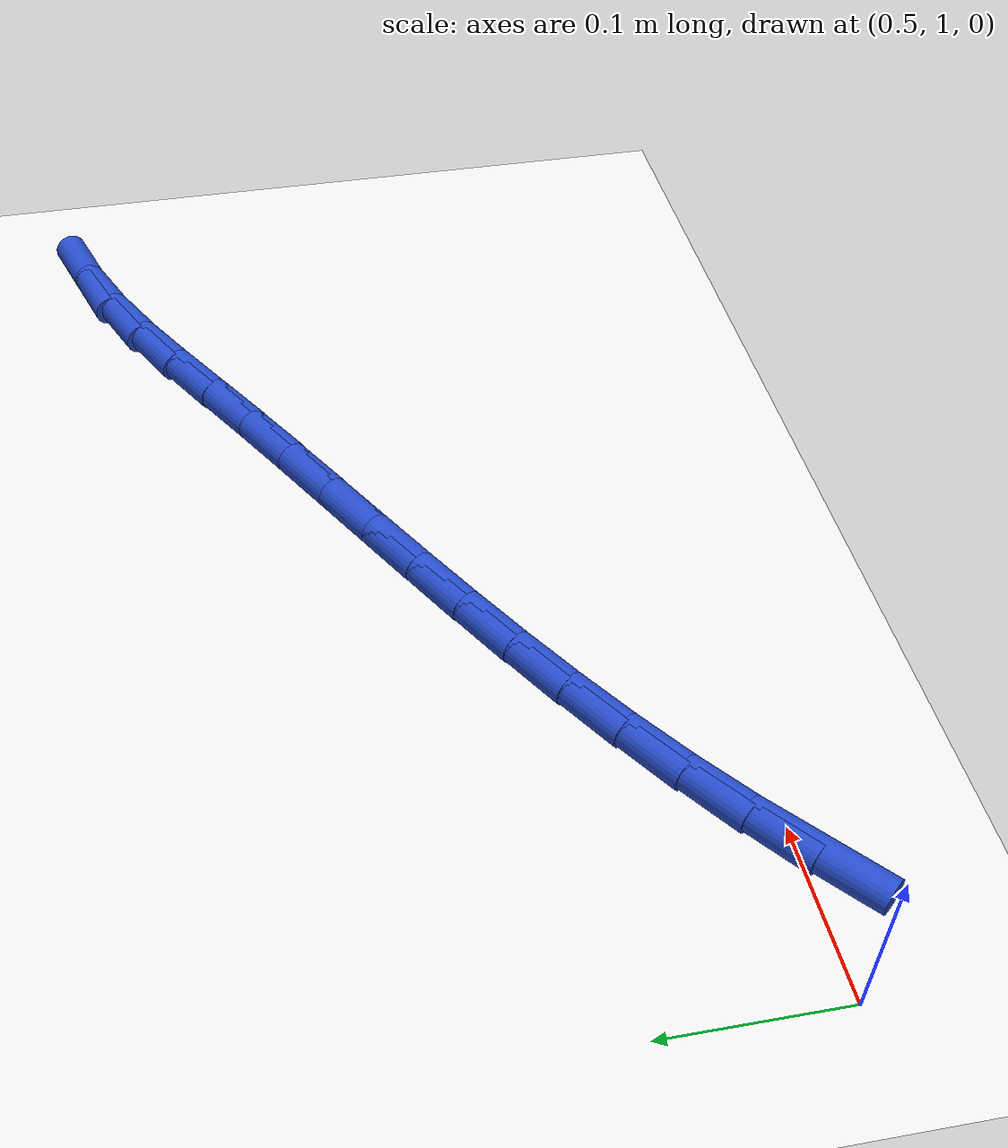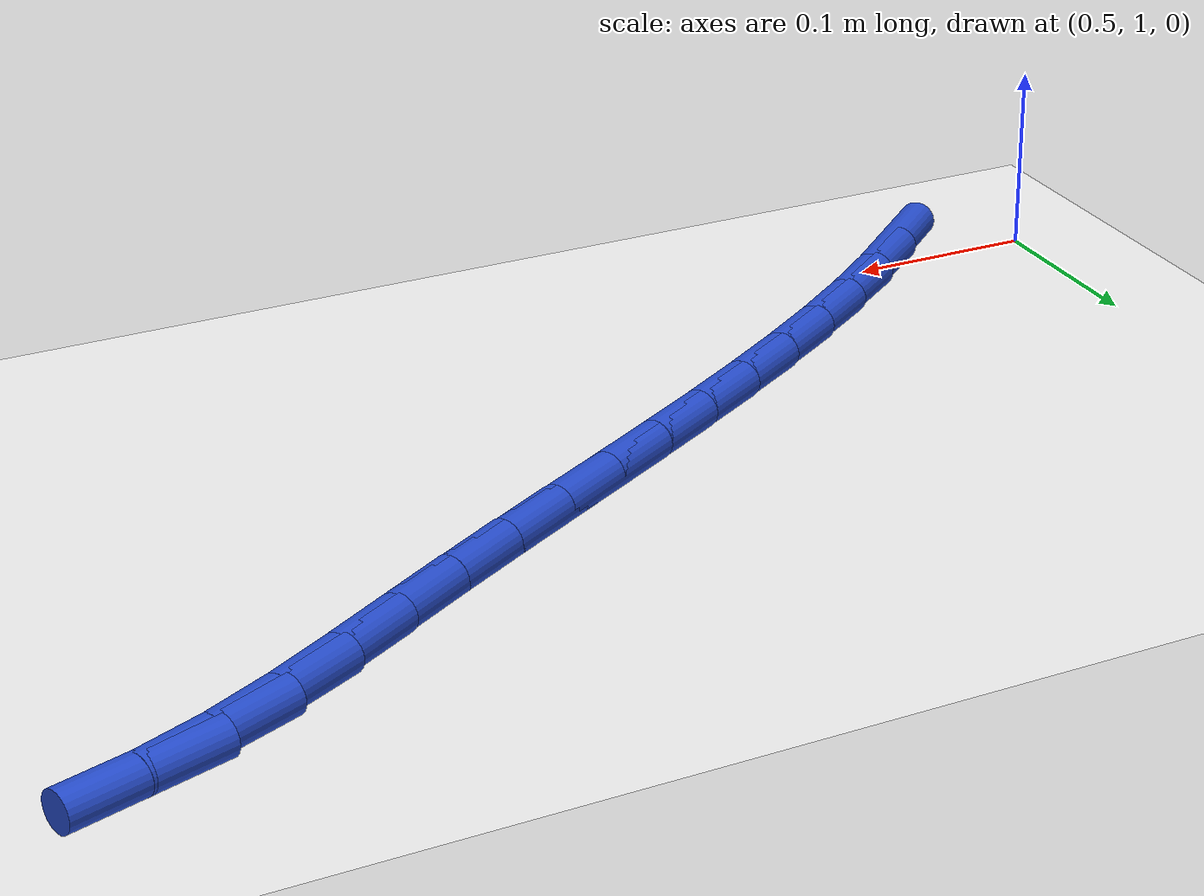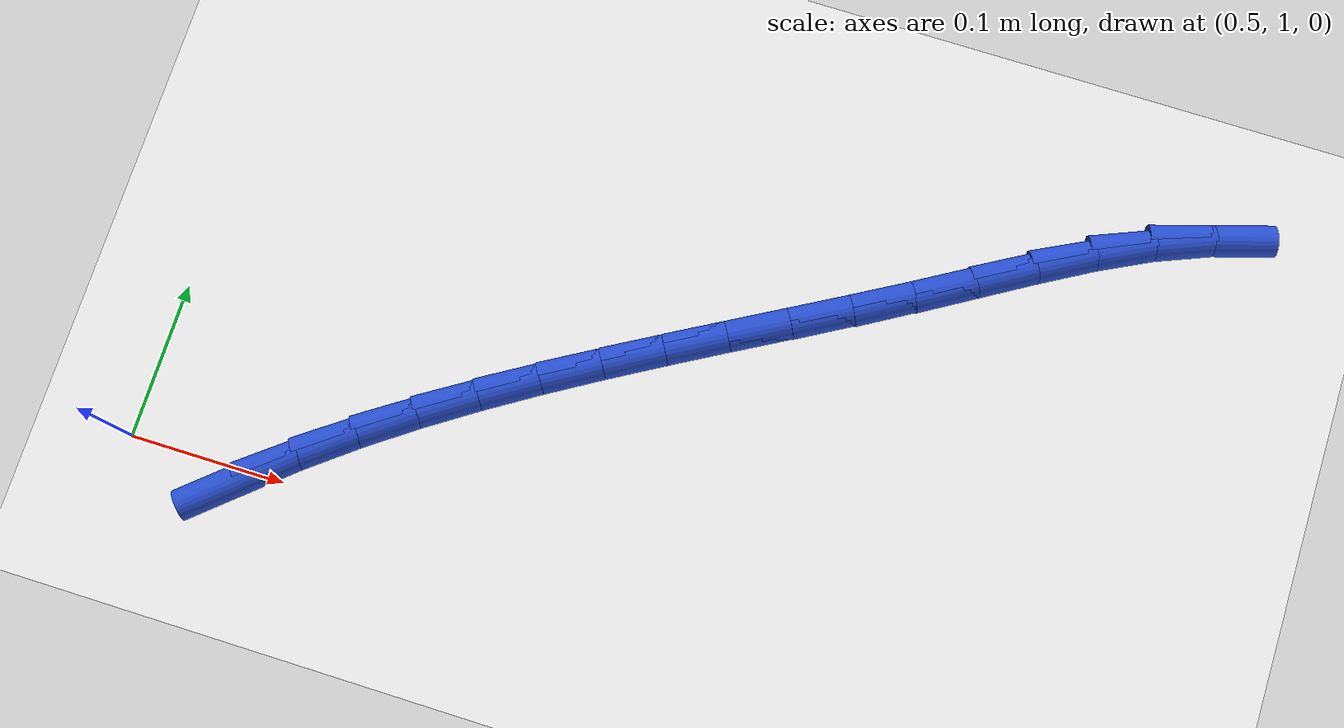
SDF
<sdf version="1.6">
 <world name="default">
  <model name="ground_plane">
   <static>1</static>
   <link name="link">
    <collision name="collision">
     <geometry><plane><normal>0 0 1</normal><size>100 100</size></plane></geometry>
     <surface><friction><ode><mu>100</mu><mu2>50</mu2></ode></friction></surface>
    </collision>
    <visual name="visual">
     <cast_shadows>0</cast_shadows>
     <geometry><plane><normal>0 0 1</normal><size>100 100</size></plane></geometry>
     <material>
      <script><uri>file://media/materials/scripts/gazebo.material</uri><name>Gazebo/WhiteGlow</name></script>
     </material>
    </visual>
   </link>
  </model>
  <model name="line">
   <link name="link_31">
    <pose>0.5760875311147672 0.993373460121395 0.01 0 1.57 0.7157484069641468</pose>
    <collision name="collision">
     <geometry><cylinder><radius>0.01</radius><length>0.08</length></cylinder></geometry>
    </collision>
    <visual name="visual">
     <material>
      <script><name>Gazebo/Blue</name><uri>file://media/materials/scripts/gazebo.material</uri></script>
     </material>
     <geometry><cylinder><radius>0.01</radius><length>0.08</length></cylinder></geometry>
    </visual>
   </link>
   <link name="link_32">
    <pose>0.6048326399451809 1.0183694501111396 0.01 0 1.57 0.6677176395451531</pose>
    <collision name="collision">
     <geometry><cylinder><radius>0.01</radius><length>0.08</length></cylinder></geometry>
    </collision>
    <visual name="visual">
     <material>
      <script><name>Gazebo/Blue</name><uri>file://media/materials/scripts/gazebo.material</uri></script>
     </material>
     <geometry><cylinder><radius>0.01</radius><length>0.08</length></cylinder></geometry>
    </visual>
   </link>
   <link name="link_33">
    <pose>0.6350610630148626 1.0422059507422439 0.01 0 1.57 0.6267960547733811</pose>
    <collision name="collision">
     <geometry><cylinder><radius>0.01</radius><length>0.08</length></cylinder></geometry>
    </collision>
    <visual name="visual">
     <material>
      <script><name>Gazebo/Blue</name><uri>file://media/materials/scripts/gazebo.material</uri></script>
     </material>
     <geometry><cylinder><radius>0.01</radius><length>0.08</length></cylinder></geometry>
    </visual>
   </link>
   <link name="link_34">
    <pose>0.6665693199928198 1.0650248278471006 0.01 0 1.57 0.592663236238043</pose>
    <collision name="collision">
     <geometry><cylinder><radius>0.01</radius><length>0.08</length></cylinder></geometry>
    </collision>
    <visual name="visual">
     <material>
      <script><name>Gazebo/Blue</name><uri>file://media/materials/scripts/gazebo.material</uri></script>
     </material>
     <geometry><cylinder><radius>0.01</radius><length>0.08</length></cylinder></geometry>
    </visual>
   </link>
   <link name="link_35">
    <pose>0.6991539305480601 1.0869679472581026 0.01 0 1.57 0.5649850006141625</pose>
    <collision name="collision">
     <geometry><cylinder><radius>0.01</radius><length>0.08</length></cylinder></geometry>
    </collision>
    <visual name="visual">
     <material>
      <script><name>Gazebo/Blue</name><uri>file://media/materials/scripts/gazebo.material</uri></script>
     </material>
     <geometry><cylinder><radius>0.01</radius><length>0.08</length></cylinder></geometry>
    </visual>
   </link>
   <link name="link_36">
    <pose>0.7326114143495912 1.1081771748076439 0.01 0 1.57 0.5434535553250549</pose>
    <collision name="collision">
     <geometry><cylinder><radius>0.01</radius><length>0.08</length></cylinder></geometry>
    </collision>
    <visual name="visual">
     <material>
      <script><name>Gazebo/Blue</name><uri>file://media/materials/scripts/gazebo.material</uri></script>
     </material>
     <geometry><cylinder><radius>0.01</radius><length>0.08</length></cylinder></geometry>
    </visual>
   </link>
   <link name="link_37">
    <pose>0.7667382910664209 1.128794376328117 0.01 0 1.57 0.5278137370952024</pose>
    <collision name="collision">
     <geometry><cylinder><radius>0.01</radius><length>0.08</length></cylinder></geometry>
    </collision>
    <visual name="visual">
     <material>
      <script><name>Gazebo/Blue</name><uri>file://media/materials/scripts/gazebo.material</uri></script>
     </material>
     <geometry><cylinder><radius>0.01</radius><length>0.08</length></cylinder></geometry>
    </visual>
   </link>
   <link name="link_38">
    <pose>0.8013310803675571 1.1489614176519152 0.01 0 1.57 0.5178794785000909</pose>
    <collision name="collision">
     <geometry><cylinder><radius>0.01</radius><length>0.08</length></cylinder></geometry>
    </collision>
    <visual name="visual">
     <material>
      <script><name>Gazebo/Blue</name><uri>file://media/materials/scripts/gazebo.material</uri></script>
     </material>
     <geometry><cylinder><radius>0.01</radius><length>0.08</length></cylinder></geometry>
    </visual>
   </link>
   <link name="link_39">
    <pose>0.8361863019220074 1.1688201646114313 0.01 0 1.57 0.5135439406419681</pose>
    <collision name="collision">
     <geometry><cylinder><radius>0.01</radius><length>0.08</length></cylinder></geometry>
    </collision>
    <visual name="visual">
     <material>
      <script><name>Gazebo/Blue</name><uri>file://media/materials/scripts/gazebo.material</uri></script>
     </material>
     <geometry><cylinder><radius>0.01</radius><length>0.08</length></cylinder></geometry>
    </visual>
   </link>
   <link name="link_40">
    <pose>0.8711004753987794 1.1885124830390592 0.01 0 1.57 0.5147857849634769</pose>
    <collision name="collision">
     <geometry><cylinder><radius>0.01</radius><length>0.08</length></cylinder></geometry>
    </collision>
    <visual name="visual">
     <material>
      <script><name>Gazebo/Blue</name><uri>file://media/materials/scripts/gazebo.material</uri></script>
     </material>
     <geometry><cylinder><radius>0.01</radius><length>0.08</length></cylinder></geometry>
    </visual>
   </link>
   <link name="link_41">
    <pose>0.9058701204668809 1.2081802387671914 0.01 0 1.57 0.5216730932892976</pose>
    <collision name="collision">
     <geometry><cylinder><radius>0.01</radius><length>0.08</length></cylinder></geometry>
    </collision>
    <visual name="visual">
     <material>
      <script><name>Gazebo/Blue</name><uri>file://media/materials/scripts/gazebo.material</uri></script>
     </material>
     <geometry><cylinder><radius>0.01</radius><length>0.08</length></cylinder></geometry>
    </visual>
   </link>
   <link name="link_42">
    <pose>0.9402917567953191 1.227965297628221 0.01 0 1.57 0.5343183449423123</pose>
    <collision name="collision">
     <geometry><cylinder><radius>0.01</radius><length>0.08</length></cylinder></geometry>
    </collision>
    <visual name="visual">
     <material>
      <script><name>Gazebo/Blue</name><uri>file://media/materials/scripts/gazebo.material</uri></script>
     </material>
     <geometry><cylinder><radius>0.01</radius><length>0.08</length></cylinder></geometry>
    </visual>
   </link>
   <link name="link_43">
    <pose>0.9741629299014147 1.2480079746376391 0.01 0 1.57 0.5426977365664463</pose>
    <collision name="collision">
     <geometry><cylinder><radius>0.01</radius><length>0.08</length></cylinder></geometry>
    </collision>
    <visual name="visual">
     <material>
      <script><name>Gazebo/Blue</name><uri>file://media/materials/scripts/gazebo.material</uri></script>
     </material>
     <geometry><cylinder><radius>0.01</radius><length>0.08</length></cylinder></geometry>
    </visual>
   </link>
   <link name="link_44">
    <pose>1.00750195938174 1.2681148315946167 0.01 0 1.57 0.5234529172749014</pose>
    <collision name="collision">
     <geometry><cylinder><radius>0.01</radius><length>0.08</length></cylinder></geometry>
    </collision>
    <visual name="visual">
     <material>
      <script><name>Gazebo/Blue</name><uri>file://media/materials/scripts/gazebo.material</uri></script>
     </material>
     <geometry><cylinder><radius>0.01</radius><length>0.08</length></cylinder></geometry>
    </visual>
   </link>
   <link name="link_45">
    <pose>1.040821368642361 1.287345322161835 0.01 0 1.57 0.4724021816477018</pose>
    <collision name="collision">
     <geometry><cylinder><radius>0.01</radius><length>0.08</length></cylinder></geometry>
    </collision>
    <visual name="visual">
     <material>
      <script><name>Gazebo/Blue</name><uri>file://media/materials/scripts/gazebo.material</uri></script>
     </material>
     <geometry><cylinder><radius>0.01</radius><length>0.08</length></cylinder></geometry>
    </visual>
   </link>
   <link name="link_46">
    <pose>1.0747008030936385 1.3046574289194286 0.01 0 1.57 0.3898643542541057</pose>
    <collision name="collision">
     <geometry><cylinder><radius>0.01</radius><length>0.08</length></cylinder></geometry>
    </collision>
    <visual name="visual">
     <material>
      <script><name>Gazebo/Blue</name><uri>file://media/materials/scripts/gazebo.material</uri></script>
     </material>
     <geometry><cylinder><radius>0.01</radius><length>0.08</length></cylinder></geometry>
    </visual>
   </link>
   <link name="link_47">
    <pose>1.1097000070043581 1.3190384743640073 0.01 0 1.57 0.2948778086860935</pose>
    <collision name="collision">
     <geometry><cylinder><radius>0.01</radius><length>0.08</length></cylinder></geometry>
    </collision>
    <visual name="visual">
     <material>
      <script><name>Gazebo/Blue</name><uri>file://media/materials/scripts/gazebo.material</uri></script>
     </material>
     <geometry><cylinder><radius>0.01</radius><length>0.08</length></cylinder></geometry>
    </visual>
   </link>
  </model>
 </world>
</sdf>
